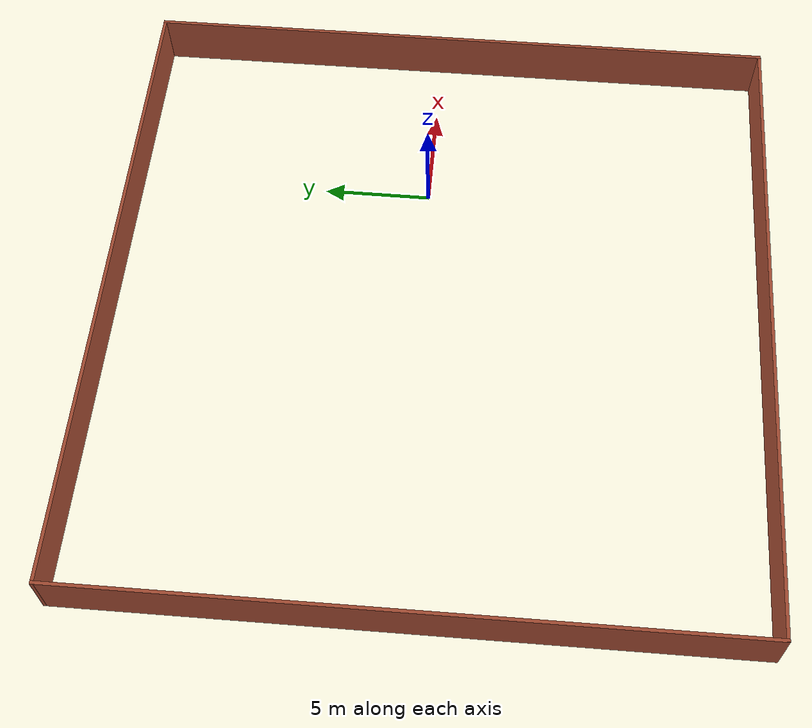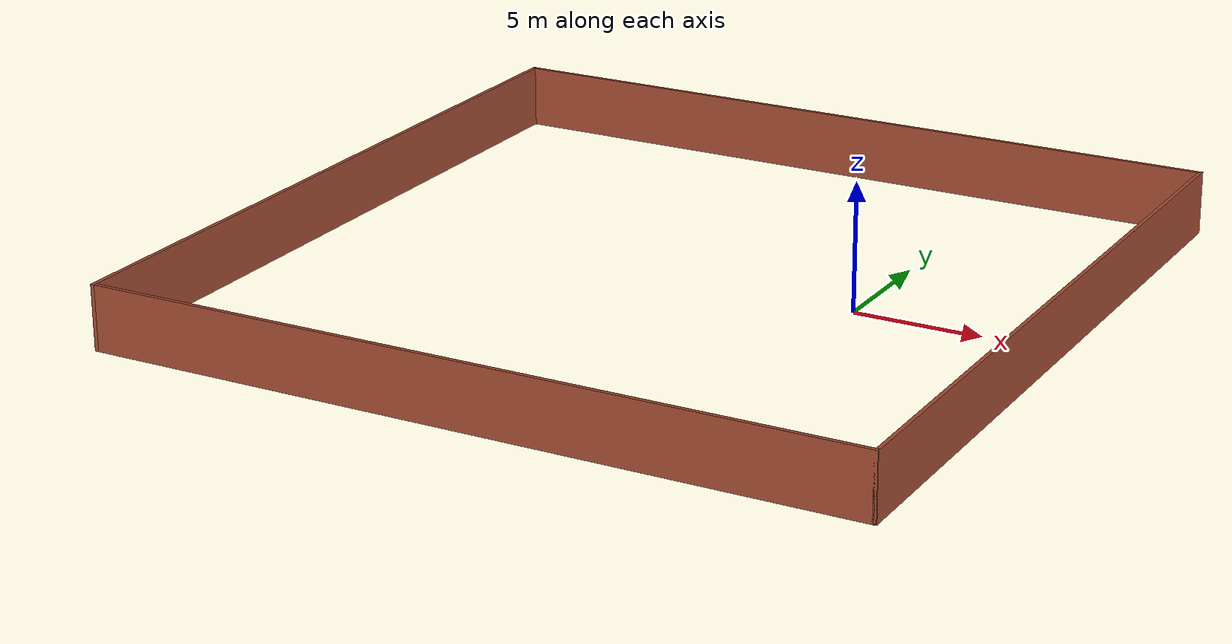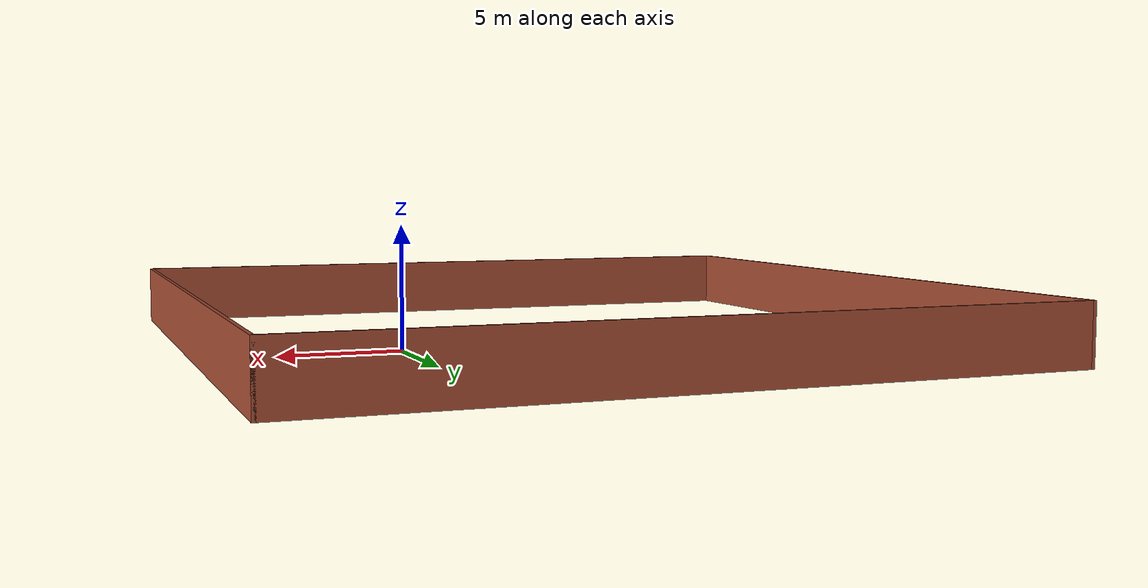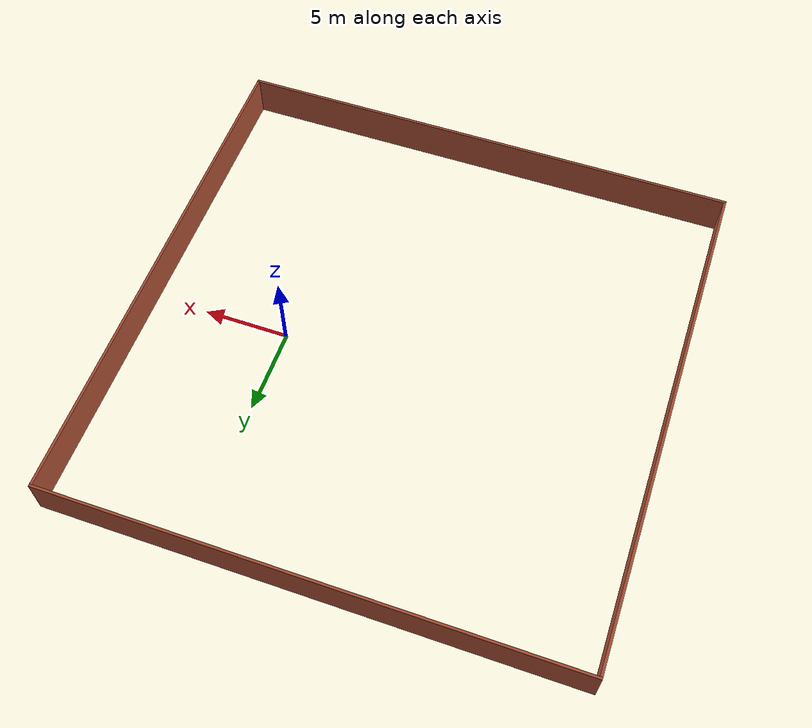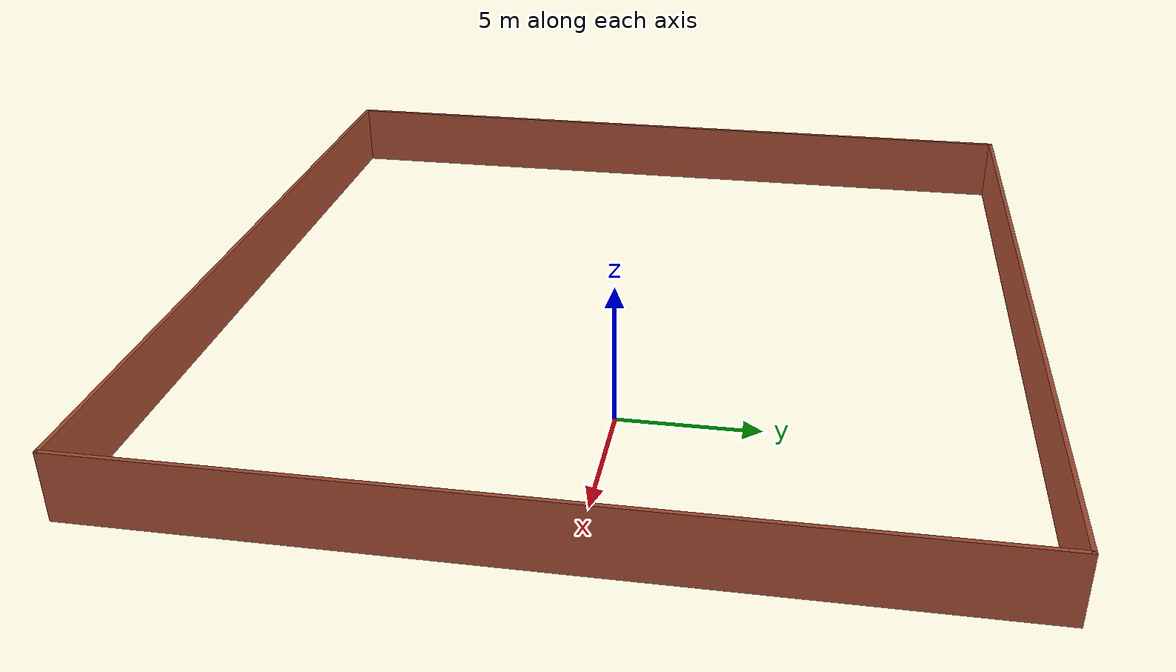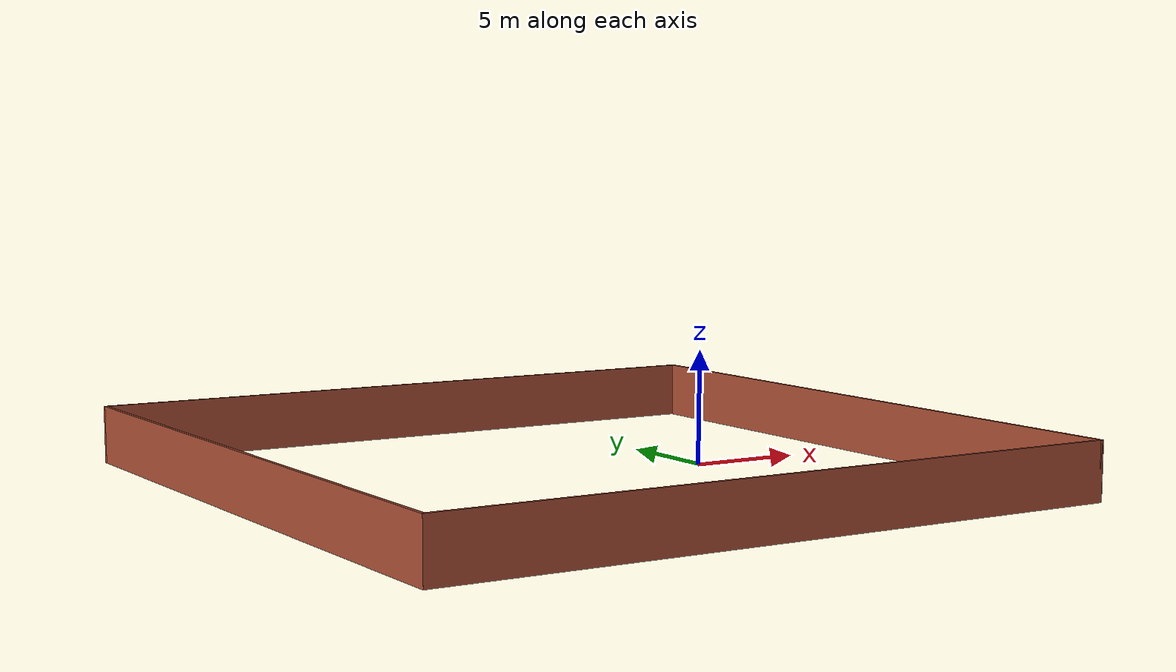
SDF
<?xml version='1.0'?>
<sdf version='1.7'>
  <model name='warehouse_outerwall'>
    <pose>-6.8225 -0.91 0 0 -0 0</pose>
    <link name='Wall_0'>
      <collision name='Wall_0_Collision'>
        <geometry>
          <box>
            <size>30 0.15 2.5</size>
          </box>
        </geometry>
        <pose>0 0 1.25 0 -0 0</pose>
      </collision>
      <visual name='Wall_0_Visual'>
        <pose>0 0 1.25 0 -0 0</pose>
        <geometry>
          <box>
            <size>30 0.15 2.5</size>
          </box>
        </geometry>
        <material>
          <script>
            <uri>file://media/materials/scripts/gazebo.material</uri>
            <name>Gazebo/Bricks</name>
          </script>
          <ambient>1 1 1 1</ambient>
        </material>
        <meta>
          <layer>0</layer>
        </meta>
      </visual>
      <pose>-14.9375 -0 0 0 -0 -1.5708</pose>
    </link>
    <link name='Wall_3'>
      <collision name='Wall_3_Collision'>
        <geometry>
          <box>
            <size>30.025 0.15 2.5</size>
          </box>
        </geometry>
        <pose>0 0 1.25 0 -0 0</pose>
      </collision>
      <visual name='Wall_3_Visual'>
        <pose>0 0 1.25 0 -0 0</pose>
        <geometry>
          <box>
            <size>30.025 0.15 2.5</size>
          </box>
        </geometry>
        <material>
          <script>
            <uri>file://media/materials/scripts/gazebo.material</uri>
            <name>Gazebo/Bricks</name>
          </script>
          <ambient>1 1 1 1</ambient>
        </material>
        <meta>
          <layer>0</layer>
        </meta>
      </visual>
      <pose>0 14.925 0 0 -0 0</pose>
    </link>
    <link name='Wall_5'>
      <collision name='Wall_5_Collision'>
        <geometry>
          <box>
            <size>30 0.15 2.5</size>
          </box>
        </geometry>
        <pose>0 0 1.25 0 -0 0</pose>
      </collision>
      <visual name='Wall_5_Visual'>
        <pose>0 0 1.25 0 -0 0</pose>
        <geometry>
          <box>
            <size>30 0.15 2.5</size>
          </box>
        </geometry>
        <material>
          <script>
            <uri>file://media/materials/scripts/gazebo.material</uri>
            <name>Gazebo/Bricks</name>
          </script>
          <ambient>1 1 1 1</ambient>
        </material>
        <meta>
          <layer>0</layer>
        </meta>
      </visual>
      <pose>-0.012499 -14.925 0 0 -0 0</pose>
    </link>
    <link name='Wall_7'>
      <collision name='Wall_7_Collision'>
        <geometry>
          <box>
            <size>30 0.15 2.5</size>
          </box>
        </geometry>
        <pose>0 0 1.25 0 -0 0</pose>
      </collision>
      <visual name='Wall_7_Visual'>
        <pose>0 0 1.25 0 -0 0</pose>
        <geometry>
          <box>
            <size>30 0.15 2.5</size>
          </box>
        </geometry>
        <material>
          <script>
            <uri>file://media/materials/scripts/gazebo.material</uri>
            <name>Gazebo/Bricks</name>
          </script>
          <ambient>1 1 1 1</ambient>
        </material>
        <meta>
          <layer>0</layer>
        </meta>
      </visual>
      <pose>14.9375 -0 0 0 -0 -1.5708</pose>
    </link>
    <static>1</static>
  </model>
</sdf>
